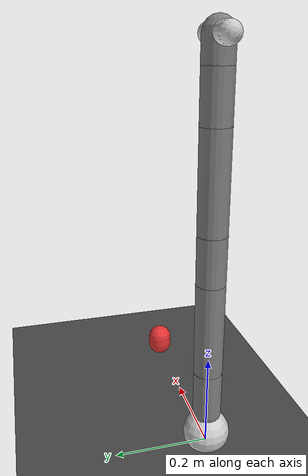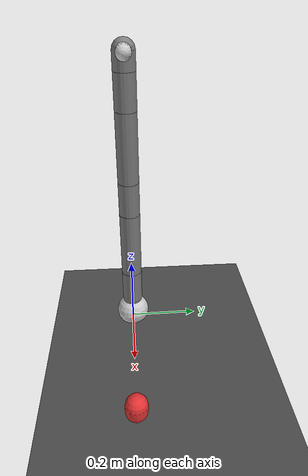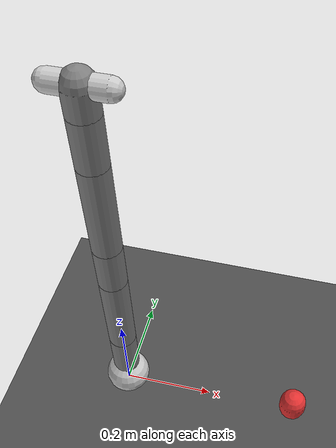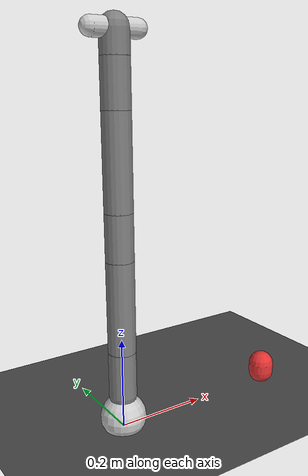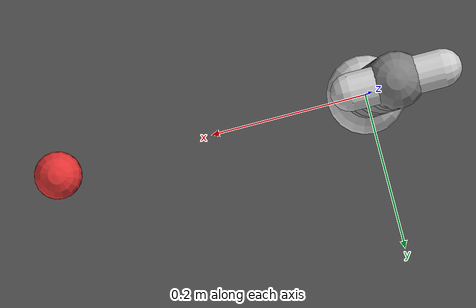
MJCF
<mujoco model="franka_pusher_mjx">
    <compiler angle="radian" coordinate="local" autolimits="true"/>

    <option timestep="0.01" gravity="0 0 -9.81" iterations="20" solver="Newton" jacobian="dense">
        <flag contact="enable"/>
    </option>

    <default>
        <geom contype="1" conaffinity="1" condim="3" friction="1 0.005 0.0001" density="1000"/>
        <joint armature="0.1" damping="1" limited="true"/>
        <general ctrllimited="true" ctrlrange="-150 150"/>
    </default>

    <asset>
        <material name="table_mat" rgba="0.3 0.3 0.3 1"/>
        <material name="block_mat" rgba="0.9 0.2 0.2 1"/>
        <material name="arm_mat" rgba="0.8 0.8 0.8 1"/>
    </asset>

    <worldbody>
        <light pos="0 0 2" dir="0 0 -1"/>

        <geom name="floor" type="plane" size="1 1 0.05" pos="0 0 0" material="table_mat"/>

        <body name="link0" pos="0 0 0.025">
            <geom type="sphere" size="0.05" material="arm_mat"/>

            <body name="link1" pos="0 0 0.05">
                <joint name="joint1" axis="0 0 1" range="-2.89 2.89"/>
                <geom type="capsule" fromto="0 0 0 0 0 0.1" size="0.03"/>

                <body name="link2" pos="0 0 0.1">
                    <joint name="joint2" axis="0 1 0" range="-1.76 1.76"/>
                    <geom type="capsule" fromto="0 0 0 0 0 0.2" size="0.03"/>

                    <body name="link3" pos="0 0 0.2">
                        <joint name="joint3" axis="0 0 1" range="-2.89 2.89"/>
                        <geom type="capsule" fromto="0 0 0 0 0 0.1" size="0.03"/>

                        <body name="link4" pos="0 0 0.1">
                            <joint name="joint4" axis="0 -1 0" range="-3.07 -0.06"/>
                            <geom type="capsule" fromto="0 0 0 0 0 0.2" size="0.03"/>

                            <body name="link5" pos="0 0 0.2">
                                <joint name="joint5" axis="0 0 1" range="-2.89 2.89"/>
                                <geom type="capsule" fromto="0 0 0 0 0 0.1" size="0.03"/>

                                <body name="link6" pos="0 0 0.1">
                                    <joint name="joint6" axis="0 1 0" range="-0.01 3.75"/>
                                    <geom type="capsule" fromto="0 0 0 0 0 0.05" size="0.03"/>

                                    <body name="link7" pos="0 0 0.05">
                                        <joint name="joint7" axis="0 0 1" range="-2.89 2.89"/>
                                        <geom type="capsule" fromto="-0.05 0 0 0.05 0 0" size="0.02" material="arm_mat"/>
                                    </body>
                                </body>
                            </body>
                        </body>
                    </body>
                </body>
            </body>
        </body>

        <body name="block" pos="0.4 0 0.03">
            <freejoint name="block_free"/>
            <geom type="capsule" size="0.03 0.01" material="block_mat" mass="0.1"/>
        </body>
    </worldbody>

    <actuator>
        <motor joint="joint1" name="m1"/>
        <motor joint="joint2" name="m2"/>
        <motor joint="joint3" name="m3"/>
        <motor joint="joint4" name="m4"/>
        <motor joint="joint5" name="m5"/>
        <motor joint="joint6" name="m6"/>
        <motor joint="joint7" name="m7"/>
    </actuator>
</mujoco>
